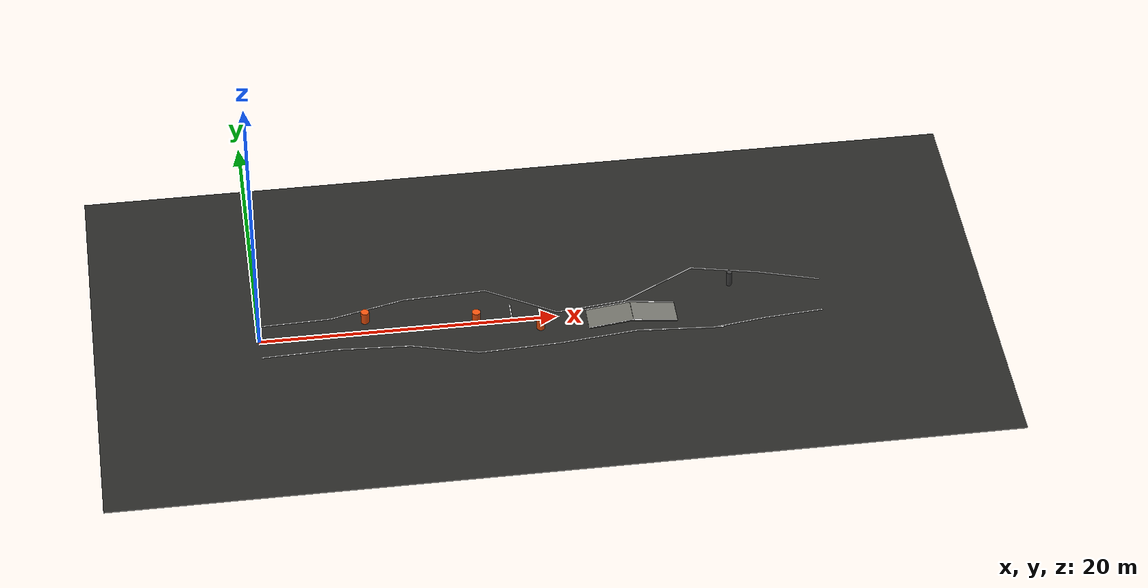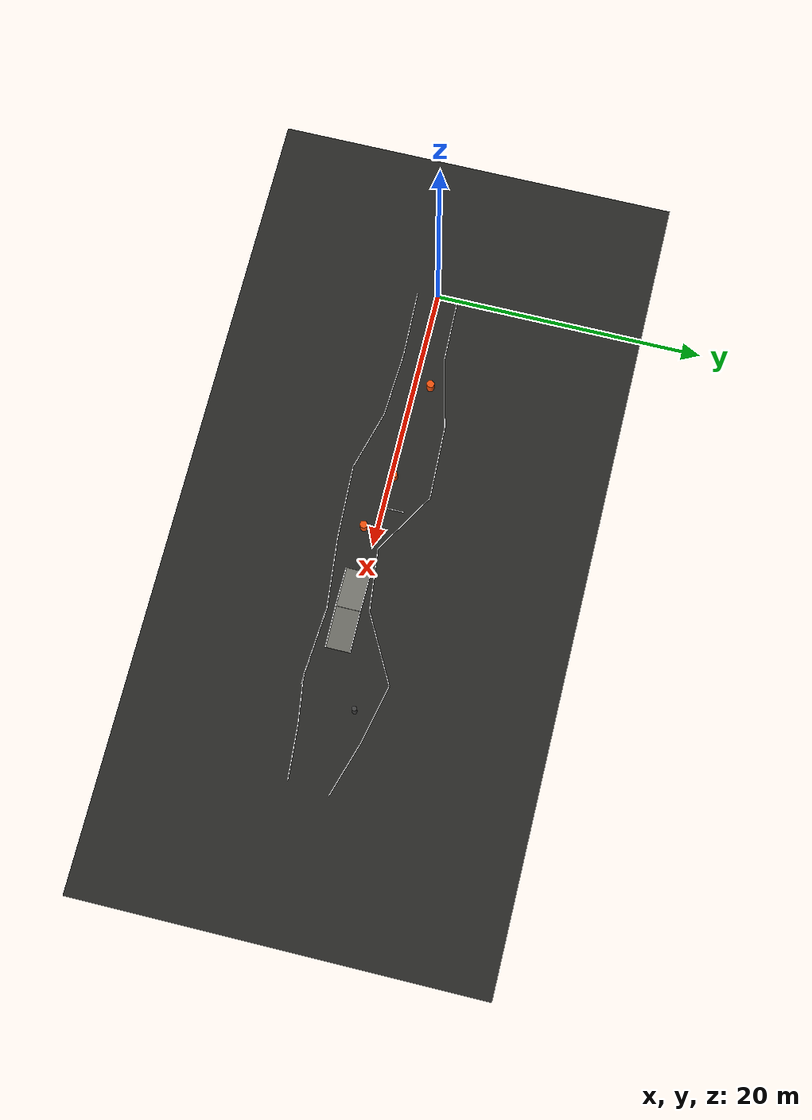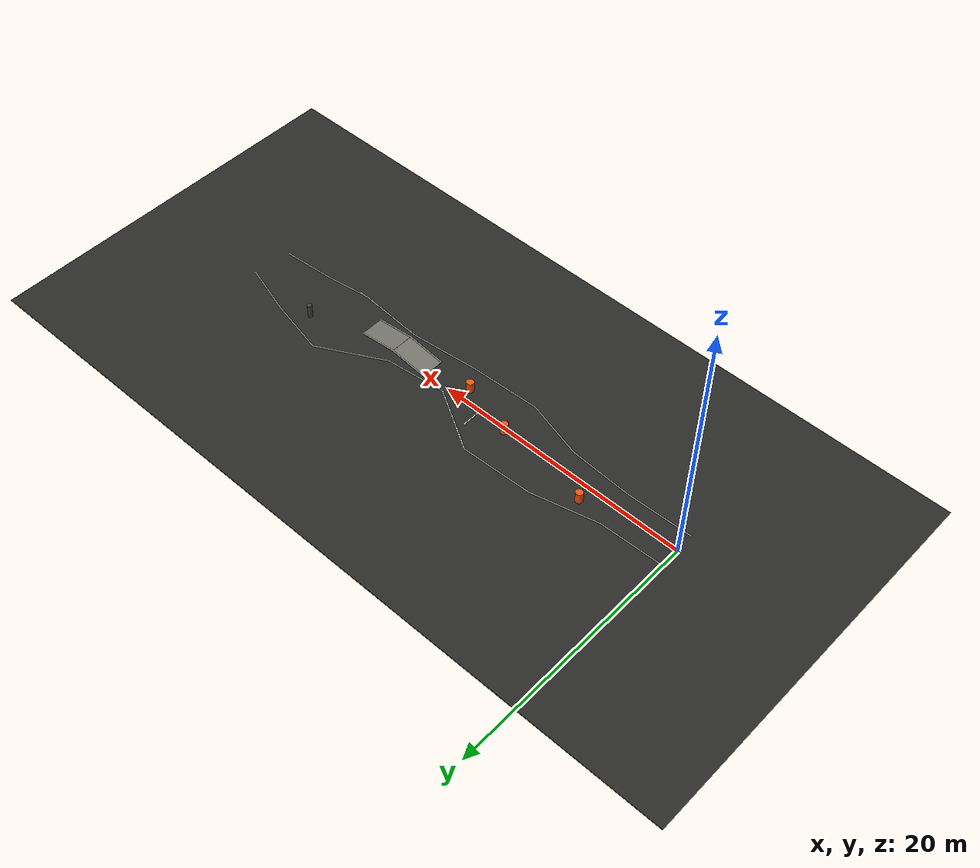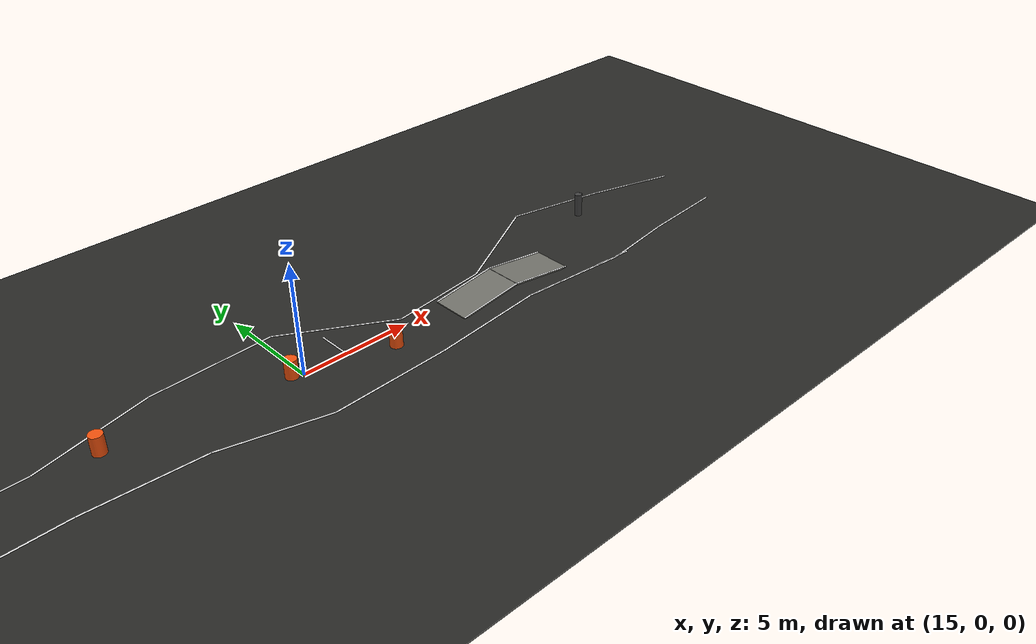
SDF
<sdf version="1.9">
 <world name="igvc_competition">
  <plugin filename="ignition-gazebo-physics-system" name="ignition::gazebo::systems::Physics"/>
  <plugin filename="ignition-gazebo-user-commands-system" name="ignition::gazebo::systems::UserCommands"/>
  <plugin filename="ignition-gazebo-scene-broadcaster-system" name="ignition::gazebo::systems::SceneBroadcaster"/>
  <plugin filename="ignition-gazebo-sensors-system" name="ignition::gazebo::systems::Sensors">
   <render_engine>ogre2</render_engine>
  </plugin>
  <light name="sun" type="directional">
   <pose>0 0 20 0 0 0</pose>
   <diffuse>0.8 0.8 0.75 1</diffuse>
   <specular>0.2 0.2 0.2 1</specular>
   <direction>-0.35 0.15 -0.92</direction>
  </light>
  <gravity>0 0 -9.80665</gravity>
  <magnetic_field>6e-06 2.3e-05 -4.2e-05</magnetic_field>
  <atmosphere type="adiabatic"/>
  <physics name="default_physics" type="ode">
   <max_step_size>0.010</max_step_size>
   <real_time_factor>1.0</real_time_factor>
   <real_time_update_rate>100</real_time_update_rate>
  </physics>
  <scene>
   <ambient>0.45 0.45 0.45 1</ambient>
   <background>0.70 0.72 0.75 1</background>
   <shadows>true</shadows>
  </scene>
  <spherical_coordinates>
   <surface_model>EARTH_WGS84</surface_model>
   <latitude_deg>37.23027000</latitude_deg>
   <longitude_deg>-80.42504000</longitude_deg>
   <elevation>650.000</elevation>
   <heading_deg>0</heading_deg>
  </spherical_coordinates>
  <model name="asphalt_ground">
   <static>1</static>
   <pose>19.0000 0.5000 -0.0250 0.000000 0.000000 0.000000</pose>
   <link name="link">
    <collision name="collision"><geometry><box><size>60.0000 30.0000 0.0500</size></box></geometry></collision>
    <visual name="visual">
     <geometry><box><size>60.0000 30.0000 0.0500</size></box></geometry>
     <material>
      <ambient>0.16 0.16 0.15 1.0</ambient>
      <diffuse>0.16 0.16 0.15 1.0</diffuse>
      <specular>0.05 0.05 0.05 1</specular>
     </material>
    </visual>
   </link>
  </model>
  <model name="left_boundary_0">
   <static>1</static>
   <pose>2.4277 1.5971 0.011 0 0 0.029803</pose>
   <link name="link">
    <visual name="visual">
     <geometry><box><size>4.9490 0.0762 0.012</size></box></geometry>
     <material>
      <ambient>0.98 0.98 0.98 1</ambient>
      <diffuse>0.98 0.98 0.98 1</diffuse>
      <specular>0.05 0.05 0.05 1</specular>
      <emissive>0.9 0.9 0.9 1</emissive>
     </material>
    </visual>
   </link>
  </model>
  <model name="right_boundary_0">
   <static>1</static>
   <pose>2.5723 -1.4471 0.011 0 0 0.030175</pose>
   <link name="link">
    <visual name="visual">
     <geometry><box><size>5.0555 0.0762 0.012</size></box></geometry>
     <material>
      <ambient>0.98 0.98 0.98 1</ambient>
      <diffuse>0.98 0.98 0.98 1</diffuse>
      <specular>0.05 0.05 0.05 1</specular>
      <emissive>0.9 0.9 0.9 1</emissive>
     </material>
    </visual>
   </link>
  </model>
  <model name="left_boundary_1">
   <static>1</static>
   <pose>7.4506 2.3034 0.011 0 0 0.243224</pose>
   <link name="link">
    <visual name="visual">
     <geometry><box><size>5.2535 0.0762 0.012</size></box></geometry>
     <material>
      <ambient>0.98 0.98 0.98 1</ambient>
      <diffuse>0.98 0.98 0.98 1</diffuse>
      <specular>0.05 0.05 0.05 1</specular>
      <emissive>0.9 0.9 0.9 1</emissive>
     </material>
    </visual>
   </link>
  </model>
  <model name="right_boundary_1">
   <static>1</static>
   <pose>7.5494 -1.5034 0.011 0 0 -0.054059</pose>
   <link name="link">
    <visual name="visual">
     <geometry><box><size>4.9083 0.0762 0.012</size></box></geometry>
     <material>
      <ambient>0.98 0.98 0.98 1</ambient>
      <diffuse>0.98 0.98 0.98 1</diffuse>
      <specular>0.05 0.05 0.05 1</specular>
      <emissive>0.9 0.9 0.9 1</emissive>
     </material>
    </visual>
   </link>
  </model>
  <model name="left_boundary_2">
   <static>1</static>
   <pose>12.7627 3.0442 0.011 0 0 0.039140</pose>
   <link name="link">
    <visual name="visual">
     <geometry><box><size>5.5297 0.0762 0.012</size></box></geometry>
     <material>
      <ambient>0.98 0.98 0.98 1</ambient>
      <diffuse>0.98 0.98 0.98 1</diffuse>
      <specular>0.05 0.05 0.05 1</specular>
      <emissive>0.9 0.9 0.9 1</emissive>
     </material>
    </visual>
   </link>
  </model>
  <model name="right_boundary_2">
   <static>1</static>
   <pose>12.2373 -2.2442 0.011 0 0 -0.265426</pose>
   <link name="link">
    <visual name="visual">
     <geometry><box><size>4.6370 0.0762 0.012</size></box></geometry>
     <material>
      <ambient>0.98 0.98 0.98 1</ambient>
      <diffuse>0.98 0.98 0.98 1</diffuse>
      <specular>0.05 0.05 0.05 1</specular>
      <emissive>0.9 0.9 0.9 1</emissive>
     </material>
    </visual>
   </link>
  </model>
  <model name="left_boundary_3">
   <static>1</static>
   <pose>17.8159 1.7863 0.011 0 0 -0.537765</pose>
   <link name="link">
    <visual name="visual">
     <geometry><box><size>5.3338 0.0762 0.012</size></box></geometry>
     <material>
      <ambient>0.98 0.98 0.98 1</ambient>
      <diffuse>0.98 0.98 0.98 1</diffuse>
      <specular>0.05 0.05 0.05 1</specular>
      <emissive>0.9 0.9 0.9 1</emissive>
     </material>
    </visual>
   </link>
  </model>
  <model name="right_boundary_3">
   <static>1</static>
   <pose>17.1841 -2.7363 0.011 0 0 0.042803</pose>
   <link name="link">
    <visual name="visual">
     <geometry><box><size>5.4240 0.0762 0.012</size></box></geometry>
     <material>
      <ambient>0.98 0.98 0.98 1</ambient>
      <diffuse>0.98 0.98 0.98 1</diffuse>
      <specular>0.05 0.05 0.05 1</specular>
      <emissive>0.9 0.9 0.9 1</emissive>
     </material>
    </visual>
   </link>
  </model>
  <model name="left_boundary_4">
   <static>1</static>
   <pose>22.4255 0.6864 0.011 0 0 0.114236</pose>
   <link name="link">
    <visual name="visual">
     <geometry><box><size>4.6686 0.0762 0.012</size></box></geometry>
     <material>
      <ambient>0.98 0.98 0.98 1</ambient>
      <diffuse>0.98 0.98 0.98 1</diffuse>
      <specular>0.05 0.05 0.05 1</specular>
      <emissive>0.9 0.9 0.9 1</emissive>
     </material>
    </visual>
   </link>
  </model>
  <model name="right_boundary_4">
   <static>1</static>
   <pose>22.5745 -2.3364 0.011 0 0 0.105510</pose>
   <link name="link">
    <visual name="visual">
     <geometry><box><size>5.3918 0.0762 0.012</size></box></geometry>
     <material>
      <ambient>0.98 0.98 0.98 1</ambient>
      <diffuse>0.98 0.98 0.98 1</diffuse>
      <specular>0.05 0.05 0.05 1</specular>
      <emissive>0.9 0.9 0.9 1</emissive>
     </material>
    </visual>
   </link>
  </model>
  <model name="left_boundary_5">
   <static>1</static>
   <pose>27.2206 2.2927 0.011 0 0 0.496115</pose>
   <link name="link">
    <visual name="visual">
     <geometry><box><size>5.6310 0.0762 0.012</size></box></geometry>
     <material>
      <ambient>0.98 0.98 0.98 1</ambient>
      <diffuse>0.98 0.98 0.98 1</diffuse>
      <specular>0.05 0.05 0.05 1</specular>
      <emissive>0.9 0.9 0.9 1</emissive>
     </material>
    </visual>
   </link>
  </model>
  <model name="right_boundary_5">
   <static>1</static>
   <pose>27.7794 -2.2427 0.011 0 0 -0.075222</pose>
   <link name="link">
    <visual name="visual">
     <geometry><box><size>5.0622 0.0762 0.012</size></box></geometry>
     <material>
      <ambient>0.98 0.98 0.98 1</ambient>
      <diffuse>0.98 0.98 0.98 1</diffuse>
      <specular>0.05 0.05 0.05 1</specular>
      <emissive>0.9 0.9 0.9 1</emissive>
     </material>
    </visual>
   </link>
  </model>
  <model name="left_boundary_6">
   <static>1</static>
   <pose>31.9480 3.1301 0.011 0 0 -0.219729</pose>
   <link name="link">
    <visual name="visual">
     <geometry><box><size>4.6135 0.0762 0.012</size></box></geometry>
     <material>
      <ambient>0.98 0.98 0.98 1</ambient>
      <diffuse>0.98 0.98 0.98 1</diffuse>
      <specular>0.05 0.05 0.05 1</specular>
      <emissive>0.9 0.9 0.9 1</emissive>
     </material>
    </visual>
   </link>
  </model>
  <model name="right_boundary_6">
   <static>1</static>
   <pose>32.0520 -2.1801 0.011 0 0 0.143561</pose>
   <link name="link">
    <visual name="visual">
     <geometry><box><size>3.5338 0.0762 0.012</size></box></geometry>
     <material>
      <ambient>0.98 0.98 0.98 1</ambient>
      <diffuse>0.98 0.98 0.98 1</diffuse>
      <specular>0.05 0.05 0.05 1</specular>
      <emissive>0.9 0.9 0.9 1</emissive>
     </material>
    </visual>
   </link>
  </model>
  <model name="left_boundary_7">
   <static>1</static>
   <pose>36.1848 2.0209 0.011 0 0 -0.296421</pose>
   <link name="link">
    <visual name="visual">
     <geometry><box><size>4.1522 0.0762 0.012</size></box></geometry>
     <material>
      <ambient>0.98 0.98 0.98 1</ambient>
      <diffuse>0.98 0.98 0.98 1</diffuse>
      <specular>0.05 0.05 0.05 1</specular>
      <emissive>0.9 0.9 0.9 1</emissive>
     </material>
    </visual>
   </link>
  </model>
  <model name="right_boundary_7">
   <static>1</static>
   <pose>35.8152 -1.7709 0.011 0 0 0.077497</pose>
   <link name="link">
    <visual name="visual">
     <geometry><box><size>4.0410 0.0762 0.012</size></box></geometry>
     <material>
      <ambient>0.98 0.98 0.98 1</ambient>
      <diffuse>0.98 0.98 0.98 1</diffuse>
      <specular>0.05 0.05 0.05 1</specular>
      <emissive>0.9 0.9 0.9 1</emissive>
     </material>
    </visual>
   </link>
  </model>
  <model name="internal_no_cross">
   <static>1</static>
   <pose>17.0000 0.7000 0.011 0 0 -1.570796</pose>
   <link name="link">
    <visual name="visual">
     <geometry><box><size>1.8000 0.0762 0.012</size></box></geometry>
     <material>
      <ambient>0.98 0.98 0.98 1</ambient>
      <diffuse>0.98 0.98 0.98 1</diffuse>
      <specular>0.05 0.05 0.05 1</specular>
      <emissive>0.9 0.9 0.9 1</emissive>
     </material>
    </visual>
   </link>
  </model>
  <model name="dashed_right_boundary_stress_0">
   <static>1</static>
   <pose>25.8743 -2.1225 0.011 0 0 -0.059928</pose>
   <link name="link">
    <visual name="visual">
     <geometry><box><size>0.7500 0.0762 0.012</size></box></geometry>
     <material>
      <ambient>0.98 0.98 0.98 1</ambient>
      <diffuse>0.98 0.98 0.98 1</diffuse>
      <specular>0.05 0.05 0.05 1</specular>
      <emissive>0.9 0.9 0.9 1</emissive>
     </material>
    </visual>
   </link>
  </model>
  <model name="dashed_right_boundary_stress_1">
   <static>1</static>
   <pose>27.0722 -2.1943 0.011 0 0 -0.059928</pose>
   <link name="link">
    <visual name="visual">
     <geometry><box><size>0.7500 0.0762 0.012</size></box></geometry>
     <material>
      <ambient>0.98 0.98 0.98 1</ambient>
      <diffuse>0.98 0.98 0.98 1</diffuse>
      <specular>0.05 0.05 0.05 1</specular>
      <emissive>0.9 0.9 0.9 1</emissive>
     </material>
    </visual>
   </link>
  </model>
  <model name="dashed_right_boundary_stress_2">
   <static>1</static>
   <pose>28.2700 -2.2662 0.011 0 0 -0.059928</pose>
   <link name="link">
    <visual name="visual">
     <geometry><box><size>0.7500 0.0762 0.012</size></box></geometry>
     <material>
      <ambient>0.98 0.98 0.98 1</ambient>
      <diffuse>0.98 0.98 0.98 1</diffuse>
      <specular>0.05 0.05 0.05 1</specular>
      <emissive>0.9 0.9 0.9 1</emissive>
     </material>
    </visual>
   </link>
  </model>
  <model name="dashed_right_boundary_stress_3">
   <static>1</static>
   <pose>29.4679 -2.3381 0.011 0 0 -0.059928</pose>
   <link name="link">
    <visual name="visual">
     <geometry><box><size>0.7500 0.0762 0.012</size></box></geometry>
     <material>
      <ambient>0.98 0.98 0.98 1</ambient>
      <diffuse>0.98 0.98 0.98 1</diffuse>
      <specular>0.05 0.05 0.05 1</specular>
      <emissive>0.9 0.9 0.9 1</emissive>
     </material>
    </visual>
   </link>
  </model>
  <model name="dashed_right_boundary_stress_4">
   <static>1</static>
   <pose>30.6457 -2.4087 0.011 0 0 -0.059928</pose>
   <link name="link">
    <visual name="visual">
     <geometry><box><size>0.7099 0.0762 0.012</size></box></geometry>
     <material>
      <ambient>0.98 0.98 0.98 1</ambient>
      <diffuse>0.98 0.98 0.98 1</diffuse>
      <specular>0.05 0.05 0.05 1</specular>
      <emissive>0.9 0.9 0.9 1</emissive>
     </material>
    </visual>
   </link>
  </model>
  <model name="left_edge_barrel">
   <static>1</static>
   <pose>7.2000 1.1800 0 0 0 0</pose>
   <link name="link">
    <collision name="collision">
     <pose>0 0 0.4250 0 0 0</pose>
     <geometry><cylinder><radius>0.2800</radius><length>0.8500</length></cylinder></geometry>
    </collision>
    <visual name="visual">
     <pose>0 0 0.4250 0 0 0</pose>
     <geometry><cylinder><radius>0.2800</radius><length>0.8500</length></cylinder></geometry>
     <material>
      <ambient>0.95 0.32 0.05 1.0</ambient>
      <diffuse>0.95 0.32 0.05 1.0</diffuse>
      <specular>0.05 0.05 0.05 1</specular>
     </material>
    </visual>
   </link>
  </model>
  <model name="center_barrel_20ft">
   <static>1</static>
   <pose>14.6000 0.2200 0 0 0 0</pose>
   <link name="link">
    <collision name="collision">
     <pose>0 0 0.4250 0 0 0</pose>
     <geometry><cylinder><radius>0.2800</radius><length>0.8500</length></cylinder></geometry>
    </collision>
    <visual name="visual">
     <pose>0 0 0.4250 0 0 0</pose>
     <geometry><cylinder><radius>0.2800</radius><length>0.8500</length></cylinder></geometry>
     <material>
      <ambient>0.95 0.32 0.05 1.0</ambient>
      <diffuse>0.95 0.32 0.05 1.0</diffuse>
      <specular>0.05 0.05 0.05 1</specular>
     </material>
    </visual>
   </link>
  </model>
  <model name="decoy_gap_barrel">
   <static>1</static>
   <pose>18.8000 -0.9500 0 0 0 0</pose>
   <link name="link">
    <collision name="collision">
     <pose>0 0 0.4250 0 0 0</pose>
     <geometry><cylinder><radius>0.2800</radius><length>0.8500</length></cylinder></geometry>
    </collision>
    <visual name="visual">
     <pose>0 0 0.4250 0 0 0</pose>
     <geometry><cylinder><radius>0.2800</radius><length>0.8500</length></cylinder></geometry>
     <material>
      <ambient>0.95 0.32 0.05 1.0</ambient>
      <diffuse>0.95 0.32 0.05 1.0</diffuse>
      <specular>0.05 0.05 0.05 1</specular>
     </material>
    </visual>
   </link>
  </model>
  <model name="post_obstacle">
   <static>1</static>
   <pose>32.0000 1.7000 0 0 0 0</pose>
   <link name="link">
    <collision name="collision">
     <pose>0 0 0.5500 0 0 0</pose>
     <geometry><cylinder><radius>0.1800</radius><length>1.1000</length></cylinder></geometry>
    </collision>
    <visual name="visual">
     <pose>0 0 0.5500 0 0 0</pose>
     <geometry><cylinder><radius>0.1800</radius><length>1.1000</length></cylinder></geometry>
     <material>
      <ambient>0.25 0.25 0.25 1.0</ambient>
      <diffuse>0.25 0.25 0.25 1.0</diffuse>
      <specular>0.05 0.05 0.05 1</specular>
     </material>
    </visual>
   </link>
  </model>
  <model name="legal_approach_ramp_up">
   <static>1</static>
   <pose>23.5000 -0.5500 0.2000 0.000000 -0.132552 0.000000</pose>
   <link name="link">
    <collision name="collision"><geometry><box><size>3.0265 1.8000 0.0800</size></box></geometry></collision>
    <visual name="visual">
     <geometry><box><size>3.0265 1.8000 0.0800</size></box></geometry>
     <material>
      <ambient>0.45 0.45 0.42 1.0</ambient>
      <diffuse>0.45 0.45 0.42 1.0</diffuse>
      <specular>0.05 0.05 0.05 1</specular>
     </material>
    </visual>
   </link>
  </model>
  <model name="legal_approach_ramp_down">
   <static>1</static>
   <pose>26.5000 -0.5500 0.2000 0.000000 0.132552 0.000000</pose>
   <link name="link">
    <collision name="collision"><geometry><box><size>3.0265 1.8000 0.0800</size></box></geometry></collision>
    <visual name="visual">
     <geometry><box><size>3.0265 1.8000 0.0800</size></box></geometry>
     <material>
      <ambient>0.45 0.45 0.42 1.0</ambient>
      <diffuse>0.45 0.45 0.42 1.0</diffuse>
      <specular>0.05 0.05 0.05 1</specular>
     </material>
    </visual>
   </link>
  </model>
  <model name="legal_approach_ramp_up_left_white_line">
   <static>1</static>
   <pose>23.5000 0.3500 0.2520 0.000000 -0.132552 0.000000</pose>
   <link name="link">
    <visual name="visual">
     <geometry><box><size>3.0265 0.0762 0.012</size></box></geometry>
     <material>
      <ambient>0.98 0.98 0.98 1</ambient>
      <diffuse>0.98 0.98 0.98 1</diffuse>
      <specular>0.05 0.05 0.05 1</specular>
      <emissive>0.9 0.9 0.9 1</emissive>
     </material>
    </visual>
   </link>
  </model>
  <model name="legal_approach_ramp_up_right_white_line">
   <static>1</static>
   <pose>23.5000 -1.4500 0.2520 0.000000 -0.132552 0.000000</pose>
   <link name="link">
    <visual name="visual">
     <geometry><box><size>3.0265 0.0762 0.012</size></box></geometry>
     <material>
      <ambient>0.98 0.98 0.98 1</ambient>
      <diffuse>0.98 0.98 0.98 1</diffuse>
      <specular>0.05 0.05 0.05 1</specular>
      <emissive>0.9 0.9 0.9 1</emissive>
     </material>
    </visual>
   </link>
  </model>
  <model name="legal_approach_ramp_down_left_white_line">
   <static>1</static>
   <pose>26.5000 0.3500 0.2520 0.000000 0.132552 0.000000</pose>
   <link name="link">
    <visual name="visual">
     <geometry><box><size>3.0265 0.0762 0.012</size></box></geometry>
     <material>
      <ambient>0.98 0.98 0.98 1</ambient>
      <diffuse>0.98 0.98 0.98 1</diffuse>
      <specular>0.05 0.05 0.05 1</specular>
      <emissive>0.9 0.9 0.9 1</emissive>
     </material>
    </visual>
   </link>
  </model>
  <model name="legal_approach_ramp_down_right_white_line">
   <static>1</static>
   <pose>26.5000 -1.4500 0.2520 0.000000 0.132552 0.000000</pose>
   <link name="link">
    <visual name="visual">
     <geometry><box><size>3.0265 0.0762 0.012</size></box></geometry>
     <material>
      <ambient>0.98 0.98 0.98 1</ambient>
      <diffuse>0.98 0.98 0.98 1</diffuse>
      <specular>0.05 0.05 0.05 1</specular>
      <emissive>0.9 0.9 0.9 1</emissive>
     </material>
    </visual>
   </link>
  </model>
 </world>
</sdf>
